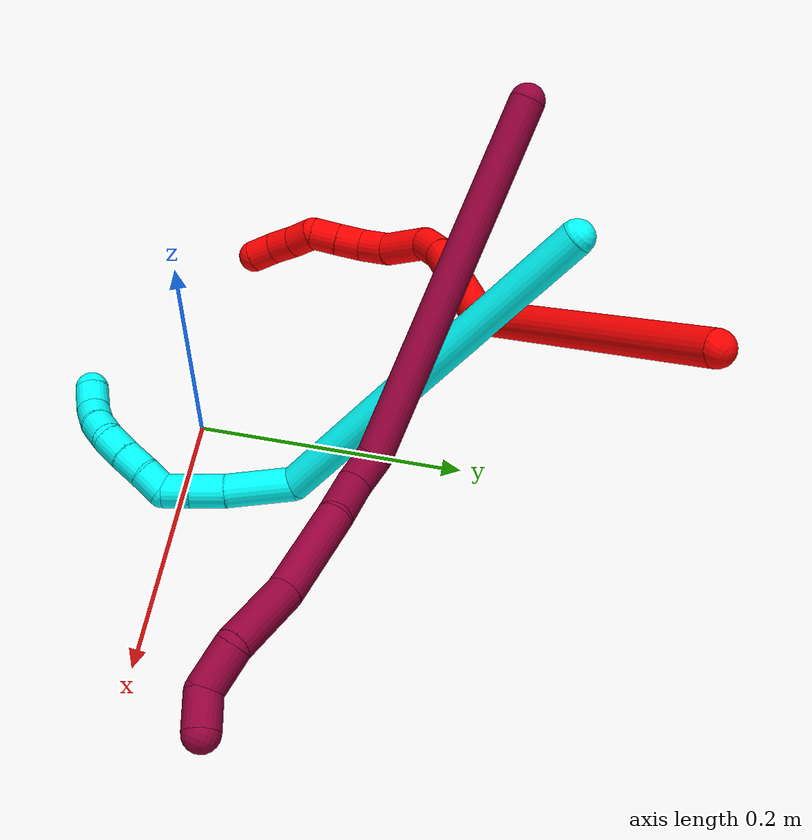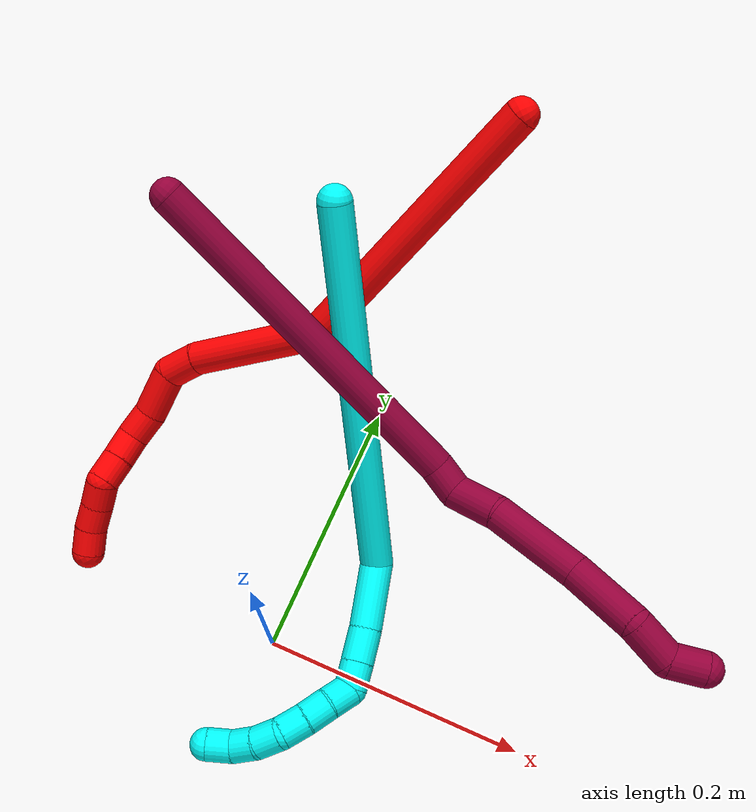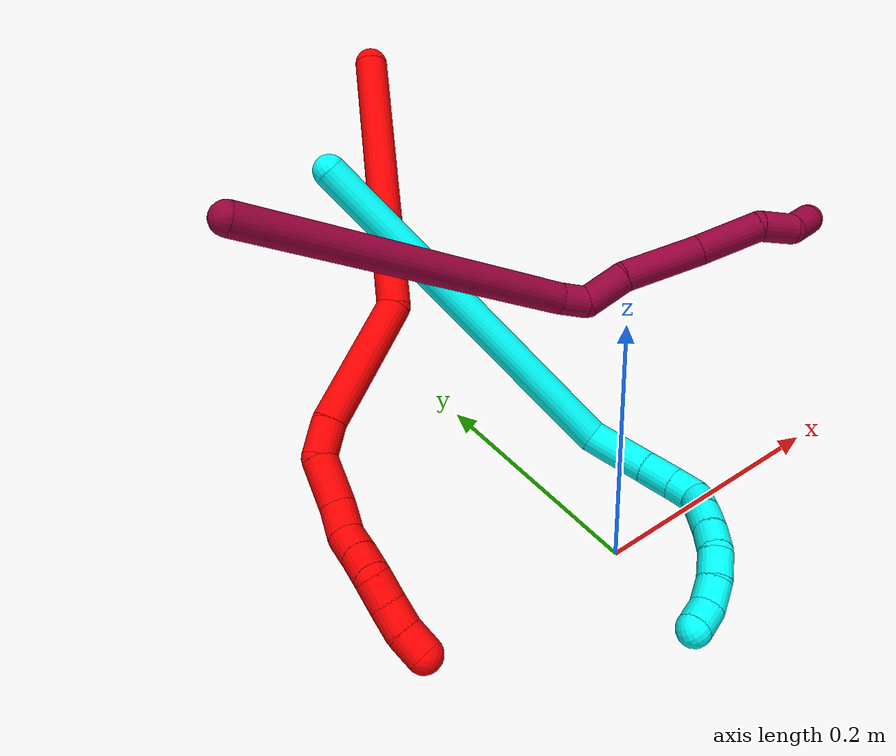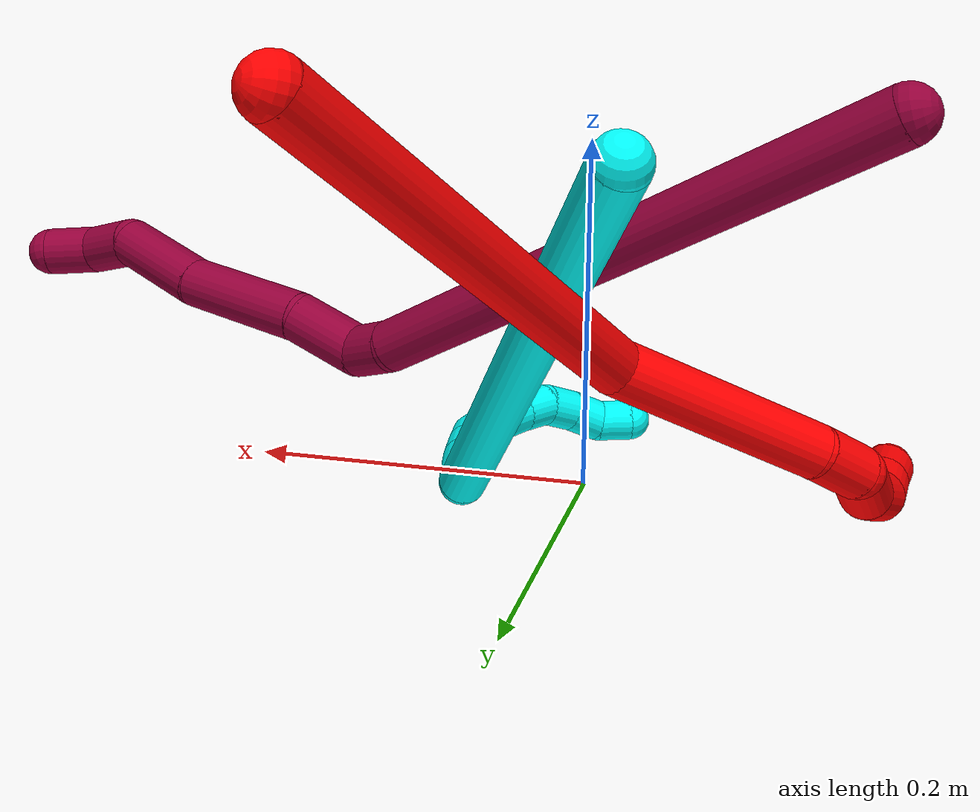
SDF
<sdf version="1.7">
 <world name="default">
  <model name="2">
   <static>0</static>
   <link name="2">
    <collision name="collision-cylinder-e_1_1_4">
     <pose>-0.00374 -0.042469 -0.09683 2.72826 -0.035358 -0.168264</pose>
     <geometry><cylinder><radius>0.0125</radius><length>0.2116</length></cylinder></geometry>
     <surface>
      <friction><ode><mu>1.16</mu><mu2>1.16</mu2><slip1>0</slip1><slip2>0</slip2></ode></friction>
      <contact><ode><kp>1e+06</kp><kd>1</kd><max_vel>0</max_vel><min_depth>0.001</min_depth></ode></contact>
     </surface>
    </collision>
    <visual name="visual-cylinder-e_1_1_4">
     <pose>-0.00374 -0.042469 -0.09683 2.72826 -0.035358 -0.168264</pose>
     <geometry><cylinder><radius>0.0125</radius><length>0.2116</length></cylinder></geometry>
     <material><ambient>1 0 0 1</ambient></material>
    </visual>
    <collision name="collision-cylinder-e_2_4_5">
     <pose>0.011284 -0.086832 -0.240218 3.10096 0.382814 2.93262</pose>
     <geometry><cylinder><radius>0.0125</radius><length>0.100468</length></cylinder></geometry>
     <surface>
      <friction><ode><mu>1.16</mu><mu2>1.16</mu2><slip1>0</slip1><slip2>0</slip2></ode></friction>
      <contact><ode><kp>1e+06</kp><kd>1</kd><max_vel>0</max_vel><min_depth>0.001</min_depth></ode></contact>
     </surface>
    </collision>
    <visual name="visual-cylinder-e_2_4_5">
     <pose>0.011284 -0.086832 -0.240218 3.10096 0.382814 2.93262</pose>
     <geometry><cylinder><radius>0.0125</radius><length>0.100468</length></cylinder></geometry>
     <material><ambient>1 0 0 1</ambient></material>
    </visual>
    <collision name="collision-cylinder-e_3_5_6">
     <pose>0.032558 -0.091089 -0.299652 2.95999 0.189506 1.61363</pose>
     <geometry><cylinder><radius>0.0125</radius><length>0.026655</length></cylinder></geometry>
     <surface>
      <friction><ode><mu>1.16</mu><mu2>1.16</mu2><slip1>0</slip1><slip2>0</slip2></ode></friction>
      <contact><ode><kp>1e+06</kp><kd>1</kd><max_vel>0</max_vel><min_depth>0.001</min_depth></ode></contact>
     </surface>
    </collision>
    <visual name="visual-cylinder-e_3_5_6">
     <pose>0.032558 -0.091089 -0.299652 2.95999 0.189506 1.61363</pose>
     <geometry><cylinder><radius>0.0125</radius><length>0.026655</length></cylinder></geometry>
     <material><ambient>1 0 0 1</ambient></material>
    </visual>
    <collision name="collision-cylinder-e_4_6_7">
     <pose>0.030124 -0.102757 -0.32721 2.57684 -0.277115 -0.8961</pose>
     <geometry><cylinder><radius>0.0125</radius><length>0.036148</length></cylinder></geometry>
     <surface>
      <friction><ode><mu>1.16</mu><mu2>1.16</mu2><slip1>0</slip1><slip2>0</slip2></ode></friction>
      <contact><ode><kp>1e+06</kp><kd>1</kd><max_vel>0</max_vel><min_depth>0.001</min_depth></ode></contact>
     </surface>
    </collision>
    <visual name="visual-cylinder-e_4_6_7">
     <pose>0.030124 -0.102757 -0.32721 2.57684 -0.277115 -0.8961</pose>
     <geometry><cylinder><radius>0.0125</radius><length>0.036148</length></cylinder></geometry>
     <material><ambient>1 0 0 1</ambient></material>
    </visual>
    <collision name="collision-cylinder-e_5_7_8">
     <pose>0.021349 -0.115287 -0.352443 2.8448 -0.334274 -1.69142</pose>
     <geometry><cylinder><radius>0.0125</radius><length>0.023353</length></cylinder></geometry>
     <surface>
      <friction><ode><mu>1.16</mu><mu2>1.16</mu2><slip1>0</slip1><slip2>0</slip2></ode></friction>
      <contact><ode><kp>1e+06</kp><kd>1</kd><max_vel>0</max_vel><min_depth>0.001</min_depth></ode></contact>
     </surface>
    </collision>
    <visual name="visual-cylinder-e_5_7_8">
     <pose>0.021349 -0.115287 -0.352443 2.8448 -0.334274 -1.69142</pose>
     <geometry><cylinder><radius>0.0125</radius><length>0.023353</length></cylinder></geometry>
     <material><ambient>1 0 0 1</ambient></material>
    </visual>
    <collision name="collision-cylinder-e_6_8_9">
     <pose>0.010744 -0.119081 -0.371034 3.07109 -0.698777 -2.94862</pose>
     <geometry><cylinder><radius>0.0125</radius><length>0.021061</length></cylinder></geometry>
     <surface>
      <friction><ode><mu>1.16</mu><mu2>1.16</mu2><slip1>0</slip1><slip2>0</slip2></ode></friction>
      <contact><ode><kp>1e+06</kp><kd>1</kd><max_vel>0</max_vel><min_depth>0.001</min_depth></ode></contact>
     </surface>
    </collision>
    <visual name="visual-cylinder-e_6_8_9">
     <pose>0.010744 -0.119081 -0.371034 3.07109 -0.698777 -2.94862</pose>
     <geometry><cylinder><radius>0.0125</radius><length>0.021061</length></cylinder></geometry>
     <material><ambient>1 0 0 1</ambient></material>
    </visual>
    <collision name="collision-cylinder-e_7_9_10">
     <pose>-0.002388 -0.12013 -0.387177 3.08231 -0.664599 -2.97017</pose>
     <geometry><cylinder><radius>0.0125</radius><length>0.020617</length></cylinder></geometry>
     <surface>
      <friction><ode><mu>1.16</mu><mu2>1.16</mu2><slip1>0</slip1><slip2>0</slip2></ode></friction>
      <contact><ode><kp>1e+06</kp><kd>1</kd><max_vel>0</max_vel><min_depth>0.001</min_depth></ode></contact>
     </surface>
    </collision>
    <visual name="visual-cylinder-e_7_9_10">
     <pose>-0.002388 -0.12013 -0.387177 3.08231 -0.664599 -2.97017</pose>
     <geometry><cylinder><radius>0.0125</radius><length>0.020617</length></cylinder></geometry>
     <material><ambient>1 0 0 1</ambient></material>
    </visual>
    <collision name="collision-cylinder-e_8_10_11">
     <pose>-0.011935 -0.127163 -0.402137 2.37916 -0.324289 -0.774954</pose>
     <geometry><cylinder><radius>0.0125</radius><length>0.020016</length></cylinder></geometry>
     <surface>
      <friction><ode><mu>1.16</mu><mu2>1.16</mu2><slip1>0</slip1><slip2>0</slip2></ode></friction>
      <contact><ode><kp>1e+06</kp><kd>1</kd><max_vel>0</max_vel><min_depth>0.001</min_depth></ode></contact>
     </surface>
    </collision>
    <visual name="visual-cylinder-e_8_10_11">
     <pose>-0.011935 -0.127163 -0.402137 2.37916 -0.324289 -0.774954</pose>
     <geometry><cylinder><radius>0.0125</radius><length>0.020016</length></cylinder></geometry>
     <material><ambient>1 0 0 1</ambient></material>
    </visual>
    <collision name="collision-cylinder-e_9_11_12">
     <pose>-0.018942 -0.139669 -0.416114 2.44493 -0.39032 -0.996997</pose>
     <geometry><cylinder><radius>0.0125</radius><length>0.020066</length></cylinder></geometry>
     <surface>
      <friction><ode><mu>1.16</mu><mu2>1.16</mu2><slip1>0</slip1><slip2>0</slip2></ode></friction>
      <contact><ode><kp>1e+06</kp><kd>1</kd><max_vel>0</max_vel><min_depth>0.001</min_depth></ode></contact>
     </surface>
    </collision>
    <visual name="visual-cylinder-e_9_11_12">
     <pose>-0.018942 -0.139669 -0.416114 2.44493 -0.39032 -0.996997</pose>
     <geometry><cylinder><radius>0.0125</radius><length>0.020066</length></cylinder></geometry>
     <material><ambient>1 0 0 1</ambient></material>
    </visual>
    <collision name="collision-cylinder-e_10_12_2">
     <pose>-0.027986 -0.151801 -0.429118 2.33206 -0.549508 -1.1639</pose>
     <geometry><cylinder><radius>0.0125</radius><length>0.020015</length></cylinder></geometry>
     <surface>
      <friction><ode><mu>1.16</mu><mu2>1.16</mu2><slip1>0</slip1><slip2>0</slip2></ode></friction>
      <contact><ode><kp>1e+06</kp><kd>1</kd><max_vel>0</max_vel><min_depth>0.001</min_depth></ode></contact>
     </surface>
    </collision>
    <visual name="visual-cylinder-e_10_12_2">
     <pose>-0.027986 -0.151801 -0.429118 2.33206 -0.549508 -1.1639</pose>
     <geometry><cylinder><radius>0.0125</radius><length>0.020015</length></cylinder></geometry>
     <material><ambient>1 0 0 1</ambient></material>
    </visual>
    <collision name="collision-sphere-2">
     <pose>-0.033212 -0.157979 -0.435005 0 -0 0</pose>
     <geometry><sphere><radius>0.0125</radius></sphere></geometry>
     <surface>
      <friction><ode><mu>1.16</mu><mu2>1.16</mu2><slip1>0</slip1><slip2>0</slip2></ode></friction>
      <contact><ode><kp>1e+06</kp><kd>1</kd><max_vel>0</max_vel><min_depth>0.001</min_depth></ode></contact>
     </surface>
    </collision>
    <visual name="visual-sphere-2">
     <pose>-0.033212 -0.157979 -0.435005 0 -0 0</pose>
     <geometry><sphere><radius>0.0125</radius></sphere></geometry>
     <material><ambient>1 0 0 1</ambient></material>
    </visual>
    <collision name="collision-sphere-12">
     <pose>-0.022759 -0.145622 -0.423231 0 -0 0</pose>
     <geometry><sphere><radius>0.0125</radius></sphere></geometry>
     <surface>
      <friction><ode><mu>1.16</mu><mu2>1.16</mu2><slip1>0</slip1><slip2>0</slip2></ode></friction>
      <contact><ode><kp>1e+06</kp><kd>1</kd><max_vel>0</max_vel><min_depth>0.001</min_depth></ode></contact>
     </surface>
    </collision>
    <visual name="visual-sphere-12">
     <pose>-0.022759 -0.145622 -0.423231 0 -0 0</pose>
     <geometry><sphere><radius>0.0125</radius></sphere></geometry>
     <material><ambient>1 0 0 1</ambient></material>
    </visual>
    <collision name="collision-sphere-11">
     <pose>-0.015124 -0.133715 -0.408997 0 -0 0</pose>
     <geometry><sphere><radius>0.0125</radius></sphere></geometry>
     <surface>
      <friction><ode><mu>1.16</mu><mu2>1.16</mu2><slip1>0</slip1><slip2>0</slip2></ode></friction>
      <contact><ode><kp>1e+06</kp><kd>1</kd><max_vel>0</max_vel><min_depth>0.001</min_depth></ode></contact>
     </surface>
    </collision>
    <visual name="visual-sphere-11">
     <pose>-0.015124 -0.133715 -0.408997 0 -0 0</pose>
     <geometry><sphere><radius>0.0125</radius></sphere></geometry>
     <material><ambient>1 0 0 1</ambient></material>
    </visual>
    <collision name="collision-sphere-10">
     <pose>-0.008746 -0.120611 -0.395277 0 -0 0</pose>
     <geometry><sphere><radius>0.0125</radius></sphere></geometry>
     <surface>
      <friction><ode><mu>1.16</mu><mu2>1.16</mu2><slip1>0</slip1><slip2>0</slip2></ode></friction>
      <contact><ode><kp>1e+06</kp><kd>1</kd><max_vel>0</max_vel><min_depth>0.001</min_depth></ode></contact>
     </surface>
    </collision>
    <visual name="visual-sphere-10">
     <pose>-0.008746 -0.120611 -0.395277 0 -0 0</pose>
     <geometry><sphere><radius>0.0125</radius></sphere></geometry>
     <material><ambient>1 0 0 1</ambient></material>
    </visual>
    <collision name="collision-sphere-9">
     <pose>0.003969 -0.119649 -0.379076 0 -0 0</pose>
     <geometry><sphere><radius>0.0125</radius></sphere></geometry>
     <surface>
      <friction><ode><mu>1.16</mu><mu2>1.16</mu2><slip1>0</slip1><slip2>0</slip2></ode></friction>
      <contact><ode><kp>1e+06</kp><kd>1</kd><max_vel>0</max_vel><min_depth>0.001</min_depth></ode></contact>
     </surface>
    </collision>
    <visual name="visual-sphere-9">
     <pose>0.003969 -0.119649 -0.379076 0 -0 0</pose>
     <geometry><sphere><radius>0.0125</radius></sphere></geometry>
     <material><ambient>1 0 0 1</ambient></material>
    </visual>
    <collision name="collision-sphere-4">
     <pose>-0.00748 -0.084939 -0.193659 0 -0 0</pose>
     <geometry><sphere><radius>0.0125</radius></sphere></geometry>
     <surface>
      <friction><ode><mu>1.16</mu><mu2>1.16</mu2><slip1>0</slip1><slip2>0</slip2></ode></friction>
      <contact><ode><kp>1e+06</kp><kd>1</kd><max_vel>0</max_vel><min_depth>0.001</min_depth></ode></contact>
     </surface>
    </collision>
    <visual name="visual-sphere-4">
     <pose>-0.00748 -0.084939 -0.193659 0 -0 0</pose>
     <geometry><sphere><radius>0.0125</radius></sphere></geometry>
     <material><ambient>1 0 0 1</ambient></material>
    </visual>
    <collision name="collision-sphere-1">
     <geometry><sphere><radius>0.0125</radius></sphere></geometry>
     <surface>
      <friction><ode><mu>1.16</mu><mu2>1.16</mu2><slip1>0</slip1><slip2>0</slip2></ode></friction>
      <contact><ode><kp>1e+06</kp><kd>1</kd><max_vel>0</max_vel><min_depth>0.001</min_depth></ode></contact>
     </surface>
    </collision>
    <visual name="visual-sphere-1">
     <geometry><sphere><radius>0.0125</radius></sphere></geometry>
     <material><ambient>1 0 0 1</ambient></material>
    </visual>
    <collision name="collision-sphere-8">
     <pose>0.017518 -0.118513 -0.362991 0 -0 0</pose>
     <geometry><sphere><radius>0.0125</radius></sphere></geometry>
     <surface>
      <friction><ode><mu>1.16</mu><mu2>1.16</mu2><slip1>0</slip1><slip2>0</slip2></ode></friction>
      <contact><ode><kp>1e+06</kp><kd>1</kd><max_vel>0</max_vel><min_depth>0.001</min_depth></ode></contact>
     </surface>
    </collision>
    <visual name="visual-sphere-8">
     <pose>0.017518 -0.118513 -0.362991 0 -0 0</pose>
     <geometry><sphere><radius>0.0125</radius></sphere></geometry>
     <material><ambient>1 0 0 1</ambient></material>
    </visual>
    <collision name="collision-sphere-5">
     <pose>0.030048 -0.088725 -0.286778 0 -0 0</pose>
     <geometry><sphere><radius>0.0125</radius></sphere></geometry>
     <surface>
      <friction><ode><mu>1.16</mu><mu2>1.16</mu2><slip1>0</slip1><slip2>0</slip2></ode></friction>
      <contact><ode><kp>1e+06</kp><kd>1</kd><max_vel>0</max_vel><min_depth>0.001</min_depth></ode></contact>
     </surface>
    </collision>
    <visual name="visual-sphere-5">
     <pose>0.030048 -0.088725 -0.286778 0 -0 0</pose>
     <geometry><sphere><radius>0.0125</radius></sphere></geometry>
     <material><ambient>1 0 0 1</ambient></material>
    </visual>
    <collision name="collision-sphere-6">
     <pose>0.035069 -0.093453 -0.312525 0 -0 0</pose>
     <geometry><sphere><radius>0.0125</radius></sphere></geometry>
     <surface>
      <friction><ode><mu>1.16</mu><mu2>1.16</mu2><slip1>0</slip1><slip2>0</slip2></ode></friction>
      <contact><ode><kp>1e+06</kp><kd>1</kd><max_vel>0</max_vel><min_depth>0.001</min_depth></ode></contact>
     </surface>
    </collision>
    <visual name="visual-sphere-6">
     <pose>0.035069 -0.093453 -0.312525 0 -0 0</pose>
     <geometry><sphere><radius>0.0125</radius></sphere></geometry>
     <material><ambient>1 0 0 1</ambient></material>
    </visual>
    <collision name="collision-sphere-7">
     <pose>0.025179 -0.112061 -0.341895 0 -0 0</pose>
     <geometry><sphere><radius>0.0125</radius></sphere></geometry>
     <surface>
      <friction><ode><mu>1.16</mu><mu2>1.16</mu2><slip1>0</slip1><slip2>0</slip2></ode></friction>
      <contact><ode><kp>1e+06</kp><kd>1</kd><max_vel>0</max_vel><min_depth>0.001</min_depth></ode></contact>
     </surface>
    </collision>
    <visual name="visual-sphere-7">
     <pose>0.025179 -0.112061 -0.341895 0 -0 0</pose>
     <geometry><sphere><radius>0.0125</radius></sphere></geometry>
     <material><ambient>1 0 0 1</ambient></material>
    </visual>
    <inertial>
     <pose>0.003591 -0.079832 -0.226908 0 -0 0</pose>
     <mass>0.5</mass>
     <inertia>
      <ixx>0.000582</ixx>
      <ixy>0</ixy>
      <ixz>0</ixz>
      <iyy>-0.000767</iyy>
      <iyz>0</iyz>
      <izz>0.000297</izz>
     </inertia>
    </inertial>
   </link>
   <pose>0.034664 0.348771 0.25547 1.27597 0.394386 2.27303</pose>
  </model>
  <model name="3">
   <static>0</static>
   <link name="3">
    <collision name="collision-cylinder-e_1_1_4">
     <pose>0.027119 0.004151 -0.138718 -3.11168 0.192978 -2.83496</pose>
     <geometry><cylinder><radius>0.0125</radius><length>0.282809</length></cylinder></geometry>
     <surface>
      <friction><ode><mu>1.16</mu><mu2>1.16</mu2><slip1>0</slip1><slip2>0</slip2></ode></friction>
      <contact><ode><kp>1e+06</kp><kd>1</kd><max_vel>0</max_vel><min_depth>0.001</min_depth></ode></contact>
     </surface>
    </collision>
    <visual name="visual-cylinder-e_1_1_4">
     <pose>0.027119 0.004151 -0.138718 -3.11168 0.192978 -2.83496</pose>
     <geometry><cylinder><radius>0.0125</radius><length>0.282809</length></cylinder></geometry>
     <material><ambient>0.003922 1 0.996078 1</ambient></material>
    </visual>
    <collision name="collision-cylinder-e_2_4_5">
     <pose>0.062799 -0.006863 -0.295754 2.45015 0.345549 0.902354</pose>
     <geometry><cylinder><radius>0.0125</radius><length>0.05055</length></cylinder></geometry>
     <surface>
      <friction><ode><mu>1.16</mu><mu2>1.16</mu2><slip1>0</slip1><slip2>0</slip2></ode></friction>
      <contact><ode><kp>1e+06</kp><kd>1</kd><max_vel>0</max_vel><min_depth>0.001</min_depth></ode></contact>
     </surface>
    </collision>
    <visual name="visual-cylinder-e_2_4_5">
     <pose>0.062799 -0.006863 -0.295754 2.45015 0.345549 0.902354</pose>
     <geometry><cylinder><radius>0.0125</radius><length>0.05055</length></cylinder></geometry>
     <material><ambient>0.003922 1 0.996078 1</ambient></material>
    </visual>
    <collision name="collision-cylinder-e_3_5_6">
     <pose>0.075373 -0.030856 -0.322696 2.34438 0.314446 0.720034</pose>
     <geometry><cylinder><radius>0.0125</radius><length>0.025955</length></cylinder></geometry>
     <surface>
      <friction><ode><mu>1.16</mu><mu2>1.16</mu2><slip1>0</slip1><slip2>0</slip2></ode></friction>
      <contact><ode><kp>1e+06</kp><kd>1</kd><max_vel>0</max_vel><min_depth>0.001</min_depth></ode></contact>
     </surface>
    </collision>
    <visual name="visual-cylinder-e_3_5_6">
     <pose>0.075373 -0.030856 -0.322696 2.34438 0.314446 0.720034</pose>
     <geometry><cylinder><radius>0.0125</radius><length>0.025955</length></cylinder></geometry>
     <material><ambient>0.003922 1 0.996078 1</ambient></material>
    </visual>
    <collision name="collision-cylinder-e_4_6_7">
     <pose>0.082277 -0.046536 -0.338021 2.3452 0.292877 0.674457</pose>
     <geometry><cylinder><radius>0.0125</radius><length>0.020022</length></cylinder></geometry>
     <surface>
      <friction><ode><mu>1.16</mu><mu2>1.16</mu2><slip1>0</slip1><slip2>0</slip2></ode></friction>
      <contact><ode><kp>1e+06</kp><kd>1</kd><max_vel>0</max_vel><min_depth>0.001</min_depth></ode></contact>
     </surface>
    </collision>
    <visual name="visual-cylinder-e_4_6_7">
     <pose>0.082277 -0.046536 -0.338021 2.3452 0.292877 0.674457</pose>
     <geometry><cylinder><radius>0.0125</radius><length>0.020022</length></cylinder></geometry>
     <material><ambient>0.003922 1 0.996078 1</ambient></material>
    </visual>
    <collision name="collision-cylinder-e_5_7_8">
     <pose>0.082525 -0.062754 -0.347236 1.83288 -0.266016 -0.345367</pose>
     <geometry><cylinder><radius>0.0125</radius><length>0.020102</length></cylinder></geometry>
     <surface>
      <friction><ode><mu>1.16</mu><mu2>1.16</mu2><slip1>0</slip1><slip2>0</slip2></ode></friction>
      <contact><ode><kp>1e+06</kp><kd>1</kd><max_vel>0</max_vel><min_depth>0.001</min_depth></ode></contact>
     </surface>
    </collision>
    <visual name="visual-cylinder-e_5_7_8">
     <pose>0.082525 -0.062754 -0.347236 1.83288 -0.266016 -0.345367</pose>
     <geometry><cylinder><radius>0.0125</radius><length>0.020102</length></cylinder></geometry>
     <material><ambient>0.003922 1 0.996078 1</ambient></material>
    </visual>
    <collision name="collision-cylinder-e_6_8_9">
     <pose>0.07675 -0.08094 -0.353409 1.96417 -0.317072 -0.470047</pose>
     <geometry><cylinder><radius>0.0125</radius><length>0.020099</length></cylinder></geometry>
     <surface>
      <friction><ode><mu>1.16</mu><mu2>1.16</mu2><slip1>0</slip1><slip2>0</slip2></ode></friction>
      <contact><ode><kp>1e+06</kp><kd>1</kd><max_vel>0</max_vel><min_depth>0.001</min_depth></ode></contact>
     </surface>
    </collision>
    <visual name="visual-cylinder-e_6_8_9">
     <pose>0.07675 -0.08094 -0.353409 1.96417 -0.317072 -0.470047</pose>
     <geometry><cylinder><radius>0.0125</radius><length>0.020099</length></cylinder></geometry>
     <material><ambient>0.003922 1 0.996078 1</ambient></material>
    </visual>
    <collision name="collision-cylinder-e_7_9_10">
     <pose>0.06959 -0.098421 -0.360727 1.9704 -0.404558 -0.599818</pose>
     <geometry><cylinder><radius>0.0125</radius><length>0.020456</length></cylinder></geometry>
     <surface>
      <friction><ode><mu>1.16</mu><mu2>1.16</mu2><slip1>0</slip1><slip2>0</slip2></ode></friction>
      <contact><ode><kp>1e+06</kp><kd>1</kd><max_vel>0</max_vel><min_depth>0.001</min_depth></ode></contact>
     </surface>
    </collision>
    <visual name="visual-cylinder-e_7_9_10">
     <pose>0.06959 -0.098421 -0.360727 1.9704 -0.404558 -0.599818</pose>
     <geometry><cylinder><radius>0.0125</radius><length>0.020456</length></cylinder></geometry>
     <material><ambient>0.003922 1 0.996078 1</ambient></material>
    </visual>
    <collision name="collision-cylinder-e_8_10_11">
     <pose>0.059053 -0.112653 -0.369542 2.31764 -0.709035 -1.40558</pose>
     <geometry><cylinder><radius>0.0125</radius><length>0.020002</length></cylinder></geometry>
     <surface>
      <friction><ode><mu>1.16</mu><mu2>1.16</mu2><slip1>0</slip1><slip2>0</slip2></ode></friction>
      <contact><ode><kp>1e+06</kp><kd>1</kd><max_vel>0</max_vel><min_depth>0.001</min_depth></ode></contact>
     </surface>
    </collision>
    <visual name="visual-cylinder-e_8_10_11">
     <pose>0.059053 -0.112653 -0.369542 2.31764 -0.709035 -1.40558</pose>
     <geometry><cylinder><radius>0.0125</radius><length>0.020002</length></cylinder></geometry>
     <material><ambient>0.003922 1 0.996078 1</ambient></material>
    </visual>
    <collision name="collision-cylinder-e_9_11_12">
     <pose>0.044534 -0.122293 -0.379098 2.39521 -0.92823 -1.81406</pose>
     <geometry><cylinder><radius>0.0125</radius><length>0.020004</length></cylinder></geometry>
     <surface>
      <friction><ode><mu>1.16</mu><mu2>1.16</mu2><slip1>0</slip1><slip2>0</slip2></ode></friction>
      <contact><ode><kp>1e+06</kp><kd>1</kd><max_vel>0</max_vel><min_depth>0.001</min_depth></ode></contact>
     </surface>
    </collision>
    <visual name="visual-cylinder-e_9_11_12">
     <pose>0.044534 -0.122293 -0.379098 2.39521 -0.92823 -1.81406</pose>
     <geometry><cylinder><radius>0.0125</radius><length>0.020004</length></cylinder></geometry>
     <material><ambient>0.003922 1 0.996078 1</ambient></material>
    </visual>
    <collision name="collision-cylinder-e_10_12_2">
     <pose>0.028474 -0.132292 -0.383513 1.57322 -0.936099 -0.938053</pose>
     <geometry><cylinder><radius>0.0125</radius><length>0.020001</length></cylinder></geometry>
     <surface>
      <friction><ode><mu>1.16</mu><mu2>1.16</mu2><slip1>0</slip1><slip2>0</slip2></ode></friction>
      <contact><ode><kp>1e+06</kp><kd>1</kd><max_vel>0</max_vel><min_depth>0.001</min_depth></ode></contact>
     </surface>
    </collision>
    <visual name="visual-cylinder-e_10_12_2">
     <pose>0.028474 -0.132292 -0.383513 1.57322 -0.936099 -0.938053</pose>
     <geometry><cylinder><radius>0.0125</radius><length>0.020001</length></cylinder></geometry>
     <material><ambient>0.003922 1 0.996078 1</ambient></material>
    </visual>
    <collision name="collision-sphere-2">
     <pose>0.020421 -0.138222 -0.383527 0 -0 0</pose>
     <geometry><sphere><radius>0.0125</radius></sphere></geometry>
     <surface>
      <friction><ode><mu>1.16</mu><mu2>1.16</mu2><slip1>0</slip1><slip2>0</slip2></ode></friction>
      <contact><ode><kp>1e+06</kp><kd>1</kd><max_vel>0</max_vel><min_depth>0.001</min_depth></ode></contact>
     </surface>
    </collision>
    <visual name="visual-sphere-2">
     <pose>0.020421 -0.138222 -0.383527 0 -0 0</pose>
     <geometry><sphere><radius>0.0125</radius></sphere></geometry>
     <material><ambient>0.003922 1 0.996078 1</ambient></material>
    </visual>
    <collision name="collision-sphere-12">
     <pose>0.036527 -0.126363 -0.383499 0 -0 0</pose>
     <geometry><sphere><radius>0.0125</radius></sphere></geometry>
     <surface>
      <friction><ode><mu>1.16</mu><mu2>1.16</mu2><slip1>0</slip1><slip2>0</slip2></ode></friction>
      <contact><ode><kp>1e+06</kp><kd>1</kd><max_vel>0</max_vel><min_depth>0.001</min_depth></ode></contact>
     </surface>
    </collision>
    <visual name="visual-sphere-12">
     <pose>0.036527 -0.126363 -0.383499 0 -0 0</pose>
     <geometry><sphere><radius>0.0125</radius></sphere></geometry>
     <material><ambient>0.003922 1 0.996078 1</ambient></material>
    </visual>
    <collision name="collision-sphere-11">
     <pose>0.052541 -0.118223 -0.374698 0 -0 0</pose>
     <geometry><sphere><radius>0.0125</radius></sphere></geometry>
     <surface>
      <friction><ode><mu>1.16</mu><mu2>1.16</mu2><slip1>0</slip1><slip2>0</slip2></ode></friction>
      <contact><ode><kp>1e+06</kp><kd>1</kd><max_vel>0</max_vel><min_depth>0.001</min_depth></ode></contact>
     </surface>
    </collision>
    <visual name="visual-sphere-11">
     <pose>0.052541 -0.118223 -0.374698 0 -0 0</pose>
     <geometry><sphere><radius>0.0125</radius></sphere></geometry>
     <material><ambient>0.003922 1 0.996078 1</ambient></material>
    </visual>
    <collision name="collision-sphere-10">
     <pose>0.065565 -0.107083 -0.364385 0 -0 0</pose>
     <geometry><sphere><radius>0.0125</radius></sphere></geometry>
     <surface>
      <friction><ode><mu>1.16</mu><mu2>1.16</mu2><slip1>0</slip1><slip2>0</slip2></ode></friction>
      <contact><ode><kp>1e+06</kp><kd>1</kd><max_vel>0</max_vel><min_depth>0.001</min_depth></ode></contact>
     </surface>
    </collision>
    <visual name="visual-sphere-10">
     <pose>0.065565 -0.107083 -0.364385 0 -0 0</pose>
     <geometry><sphere><radius>0.0125</radius></sphere></geometry>
     <material><ambient>0.003922 1 0.996078 1</ambient></material>
    </visual>
    <collision name="collision-sphere-9">
     <pose>0.073616 -0.08976 -0.357069 0 -0 0</pose>
     <geometry><sphere><radius>0.0125</radius></sphere></geometry>
     <surface>
      <friction><ode><mu>1.16</mu><mu2>1.16</mu2><slip1>0</slip1><slip2>0</slip2></ode></friction>
      <contact><ode><kp>1e+06</kp><kd>1</kd><max_vel>0</max_vel><min_depth>0.001</min_depth></ode></contact>
     </surface>
    </collision>
    <visual name="visual-sphere-9">
     <pose>0.073616 -0.08976 -0.357069 0 -0 0</pose>
     <geometry><sphere><radius>0.0125</radius></sphere></geometry>
     <material><ambient>0.003922 1 0.996078 1</ambient></material>
    </visual>
    <collision name="collision-sphere-4">
     <pose>0.054238 0.008301 -0.277435 0 -0 0</pose>
     <geometry><sphere><radius>0.0125</radius></sphere></geometry>
     <surface>
      <friction><ode><mu>1.16</mu><mu2>1.16</mu2><slip1>0</slip1><slip2>0</slip2></ode></friction>
      <contact><ode><kp>1e+06</kp><kd>1</kd><max_vel>0</max_vel><min_depth>0.001</min_depth></ode></contact>
     </surface>
    </collision>
    <visual name="visual-sphere-4">
     <pose>0.054238 0.008301 -0.277435 0 -0 0</pose>
     <geometry><sphere><radius>0.0125</radius></sphere></geometry>
     <material><ambient>0.003922 1 0.996078 1</ambient></material>
    </visual>
    <collision name="collision-sphere-1">
     <geometry><sphere><radius>0.0125</radius></sphere></geometry>
     <surface>
      <friction><ode><mu>1.16</mu><mu2>1.16</mu2><slip1>0</slip1><slip2>0</slip2></ode></friction>
      <contact><ode><kp>1e+06</kp><kd>1</kd><max_vel>0</max_vel><min_depth>0.001</min_depth></ode></contact>
     </surface>
    </collision>
    <visual name="visual-sphere-1">
     <geometry><sphere><radius>0.0125</radius></sphere></geometry>
     <material><ambient>0.003922 1 0.996078 1</ambient></material>
    </visual>
    <collision name="collision-sphere-8">
     <pose>0.079883 -0.072121 -0.349749 0 -0 0</pose>
     <geometry><sphere><radius>0.0125</radius></sphere></geometry>
     <surface>
      <friction><ode><mu>1.16</mu><mu2>1.16</mu2><slip1>0</slip1><slip2>0</slip2></ode></friction>
      <contact><ode><kp>1e+06</kp><kd>1</kd><max_vel>0</max_vel><min_depth>0.001</min_depth></ode></contact>
     </surface>
    </collision>
    <visual name="visual-sphere-8">
     <pose>0.079883 -0.072121 -0.349749 0 -0 0</pose>
     <geometry><sphere><radius>0.0125</radius></sphere></geometry>
     <material><ambient>0.003922 1 0.996078 1</ambient></material>
    </visual>
    <collision name="collision-sphere-5">
     <pose>0.07136 -0.022027 -0.314073 0 -0 0</pose>
     <geometry><sphere><radius>0.0125</radius></sphere></geometry>
     <surface>
      <friction><ode><mu>1.16</mu><mu2>1.16</mu2><slip1>0</slip1><slip2>0</slip2></ode></friction>
      <contact><ode><kp>1e+06</kp><kd>1</kd><max_vel>0</max_vel><min_depth>0.001</min_depth></ode></contact>
     </surface>
    </collision>
    <visual name="visual-sphere-5">
     <pose>0.07136 -0.022027 -0.314073 0 -0 0</pose>
     <geometry><sphere><radius>0.0125</radius></sphere></geometry>
     <material><ambient>0.003922 1 0.996078 1</ambient></material>
    </visual>
    <collision name="collision-sphere-6">
     <pose>0.079387 -0.039685 -0.331319 0 -0 0</pose>
     <geometry><sphere><radius>0.0125</radius></sphere></geometry>
     <surface>
      <friction><ode><mu>1.16</mu><mu2>1.16</mu2><slip1>0</slip1><slip2>0</slip2></ode></friction>
      <contact><ode><kp>1e+06</kp><kd>1</kd><max_vel>0</max_vel><min_depth>0.001</min_depth></ode></contact>
     </surface>
    </collision>
    <visual name="visual-sphere-6">
     <pose>0.079387 -0.039685 -0.331319 0 -0 0</pose>
     <geometry><sphere><radius>0.0125</radius></sphere></geometry>
     <material><ambient>0.003922 1 0.996078 1</ambient></material>
    </visual>
    <collision name="collision-sphere-7">
     <pose>0.085168 -0.053388 -0.344724 0 -0 0</pose>
     <geometry><sphere><radius>0.0125</radius></sphere></geometry>
     <surface>
      <friction><ode><mu>1.16</mu><mu2>1.16</mu2><slip1>0</slip1><slip2>0</slip2></ode></friction>
      <contact><ode><kp>1e+06</kp><kd>1</kd><max_vel>0</max_vel><min_depth>0.001</min_depth></ode></contact>
     </surface>
    </collision>
    <visual name="visual-sphere-7">
     <pose>0.085168 -0.053388 -0.344724 0 -0 0</pose>
     <geometry><sphere><radius>0.0125</radius></sphere></geometry>
     <material><ambient>0.003922 1 0.996078 1</ambient></material>
    </visual>
    <inertial>
     <pose>0.043428 -0.026306 -0.226865 0 -0 0</pose>
     <mass>0.5</mass>
     <inertia>
      <ixx>-0.002312</ixx>
      <ixy>0</ixy>
      <ixz>0</ixz>
      <iyy>0.001241</iyy>
      <iyz>0</iyz>
      <izz>-0.000434</izz>
     </inertia>
    </inertial>
   </link>
   <pose>-0.058373 0.25683 0.223712 -0.607203 -0.378071 -0.174965</pose>
  </model>
  <model name="8">
   <static>0</static>
   <link name="8">
    <collision name="collision-cylinder-e_1_1_4">
     <pose>0.024699 -0.002163 0.12837 0.016844 0.190059 0.001606</pose>
     <geometry><cylinder><radius>0.0125</radius><length>0.261484</length></cylinder></geometry>
     <surface>
      <friction><ode><mu>1.16</mu><mu2>1.16</mu2><slip1>0</slip1><slip2>0</slip2></ode></friction>
      <contact><ode><kp>1e+06</kp><kd>1</kd><max_vel>0</max_vel><min_depth>0.001</min_depth></ode></contact>
     </surface>
    </collision>
    <visual name="visual-cylinder-e_1_1_4">
     <pose>0.024699 -0.002163 0.12837 0.016844 0.190059 0.001606</pose>
     <geometry><cylinder><radius>0.0125</radius><length>0.261484</length></cylinder></geometry>
     <material><ambient>0.584314 0 0.227451 1</ambient></material>
    </visual>
    <collision name="collision-cylinder-e_2_4_5">
     <pose>0.049913 -0.007072 0.268059 0.238115 0.044139 0.005281</pose>
     <geometry><cylinder><radius>0.0125</radius><length>0.023319</length></cylinder></geometry>
     <surface>
      <friction><ode><mu>1.16</mu><mu2>1.16</mu2><slip1>0</slip1><slip2>0</slip2></ode></friction>
      <contact><ode><kp>1e+06</kp><kd>1</kd><max_vel>0</max_vel><min_depth>0.001</min_depth></ode></contact>
     </surface>
    </collision>
    <visual name="visual-cylinder-e_2_4_5">
     <pose>0.049913 -0.007072 0.268059 0.238115 0.044139 0.005281</pose>
     <geometry><cylinder><radius>0.0125</radius><length>0.023319</length></cylinder></geometry>
     <material><ambient>0.584314 0 0.227451 1</ambient></material>
    </visual>
    <collision name="collision-cylinder-e_3_5_6">
     <pose>0.039103 -0.01099 0.293596 0.082103 -0.670952 -0.02864</pose>
     <geometry><cylinder><radius>0.0125</radius><length>0.036429</length></cylinder></geometry>
     <surface>
      <friction><ode><mu>1.16</mu><mu2>1.16</mu2><slip1>0</slip1><slip2>0</slip2></ode></friction>
      <contact><ode><kp>1e+06</kp><kd>1</kd><max_vel>0</max_vel><min_depth>0.001</min_depth></ode></contact>
     </surface>
    </collision>
    <visual name="visual-cylinder-e_3_5_6">
     <pose>0.039103 -0.01099 0.293596 0.082103 -0.670952 -0.02864</pose>
     <geometry><cylinder><radius>0.0125</radius><length>0.036429</length></cylinder></geometry>
     <material><ambient>0.584314 0 0.227451 1</ambient></material>
    </visual>
    <collision name="collision-cylinder-e_4_6_7">
     <pose>0.014138 -0.01677 0.338264 0.150245 -0.416938 -0.03184</pose>
     <geometry><cylinder><radius>0.0125</radius><length>0.067365</length></cylinder></geometry>
     <surface>
      <friction><ode><mu>1.16</mu><mu2>1.16</mu2><slip1>0</slip1><slip2>0</slip2></ode></friction>
      <contact><ode><kp>1e+06</kp><kd>1</kd><max_vel>0</max_vel><min_depth>0.001</min_depth></ode></contact>
     </surface>
    </collision>
    <visual name="visual-cylinder-e_4_6_7">
     <pose>0.014138 -0.01677 0.338264 0.150245 -0.416938 -0.03184</pose>
     <geometry><cylinder><radius>0.0125</radius><length>0.067365</length></cylinder></geometry>
     <material><ambient>0.584314 0 0.227451 1</ambient></material>
    </visual>
    <collision name="collision-cylinder-e_5_7_8">
     <pose>-0.012991 -0.028475 0.39067 0.312583 -0.529039 -0.085313</pose>
     <geometry><cylinder><radius>0.0125</radius><length>0.053455</length></cylinder></geometry>
     <surface>
      <friction><ode><mu>1.16</mu><mu2>1.16</mu2><slip1>0</slip1><slip2>0</slip2></ode></friction>
      <contact><ode><kp>1e+06</kp><kd>1</kd><max_vel>0</max_vel><min_depth>0.001</min_depth></ode></contact>
     </surface>
    </collision>
    <visual name="visual-cylinder-e_5_7_8">
     <pose>-0.012991 -0.028475 0.39067 0.312583 -0.529039 -0.085313</pose>
     <geometry><cylinder><radius>0.0125</radius><length>0.053455</length></cylinder></geometry>
     <material><ambient>0.584314 0 0.227451 1</ambient></material>
    </visual>
    <collision name="collision-cylinder-e_6_8_9">
     <pose>-0.026808 -0.03833 0.428334 0.173892 -0.020504 -0.001787</pose>
     <geometry><cylinder><radius>0.0125</radius><length>0.031905</length></cylinder></geometry>
     <surface>
      <friction><ode><mu>1.16</mu><mu2>1.16</mu2><slip1>0</slip1><slip2>0</slip2></ode></friction>
      <contact><ode><kp>1e+06</kp><kd>1</kd><max_vel>0</max_vel><min_depth>0.001</min_depth></ode></contact>
     </surface>
    </collision>
    <visual name="visual-cylinder-e_6_8_9">
     <pose>-0.026808 -0.03833 0.428334 0.173892 -0.020504 -0.001787</pose>
     <geometry><cylinder><radius>0.0125</radius><length>0.031905</length></cylinder></geometry>
     <material><ambient>0.584314 0 0.227451 1</ambient></material>
    </visual>
    <collision name="collision-cylinder-e_7_9_2">
     <pose>-0.030586 -0.036507 0.455733 -0.37356 -0.268247 0.050989</pose>
     <geometry><cylinder><radius>0.0125</radius><length>0.026043</length></cylinder></geometry>
     <surface>
      <friction><ode><mu>1.16</mu><mu2>1.16</mu2><slip1>0</slip1><slip2>0</slip2></ode></friction>
      <contact><ode><kp>1e+06</kp><kd>1</kd><max_vel>0</max_vel><min_depth>0.001</min_depth></ode></contact>
     </surface>
    </collision>
    <visual name="visual-cylinder-e_7_9_2">
     <pose>-0.030586 -0.036507 0.455733 -0.37356 -0.268247 0.050989</pose>
     <geometry><cylinder><radius>0.0125</radius><length>0.026043</length></cylinder></geometry>
     <material><ambient>0.584314 0 0.227451 1</ambient></material>
    </visual>
    <collision name="collision-sphere-2">
     <pose>-0.034037 -0.031925 0.467423 0 -0 0</pose>
     <geometry><sphere><radius>0.0125</radius></sphere></geometry>
     <surface>
      <friction><ode><mu>1.16</mu><mu2>1.16</mu2><slip1>0</slip1><slip2>0</slip2></ode></friction>
      <contact><ode><kp>1e+06</kp><kd>1</kd><max_vel>0</max_vel><min_depth>0.001</min_depth></ode></contact>
     </surface>
    </collision>
    <visual name="visual-sphere-2">
     <pose>-0.034037 -0.031925 0.467423 0 -0 0</pose>
     <geometry><sphere><radius>0.0125</radius></sphere></geometry>
     <material><ambient>0.584314 0 0.227451 1</ambient></material>
    </visual>
    <collision name="collision-sphere-9">
     <pose>-0.027135 -0.041089 0.444043 0 -0 0</pose>
     <geometry><sphere><radius>0.0125</radius></sphere></geometry>
     <surface>
      <friction><ode><mu>1.16</mu><mu2>1.16</mu2><slip1>0</slip1><slip2>0</slip2></ode></friction>
      <contact><ode><kp>1e+06</kp><kd>1</kd><max_vel>0</max_vel><min_depth>0.001</min_depth></ode></contact>
     </surface>
    </collision>
    <visual name="visual-sphere-9">
     <pose>-0.027135 -0.041089 0.444043 0 -0 0</pose>
     <geometry><sphere><radius>0.0125</radius></sphere></geometry>
     <material><ambient>0.584314 0 0.227451 1</ambient></material>
    </visual>
    <collision name="collision-sphere-4">
     <pose>0.049399 -0.004325 0.256739 0 -0 0</pose>
     <geometry><sphere><radius>0.0125</radius></sphere></geometry>
     <surface>
      <friction><ode><mu>1.16</mu><mu2>1.16</mu2><slip1>0</slip1><slip2>0</slip2></ode></friction>
      <contact><ode><kp>1e+06</kp><kd>1</kd><max_vel>0</max_vel><min_depth>0.001</min_depth></ode></contact>
     </surface>
    </collision>
    <visual name="visual-sphere-4">
     <pose>0.049399 -0.004325 0.256739 0 -0 0</pose>
     <geometry><sphere><radius>0.0125</radius></sphere></geometry>
     <material><ambient>0.584314 0 0.227451 1</ambient></material>
    </visual>
    <collision name="collision-sphere-1">
     <geometry><sphere><radius>0.0125</radius></sphere></geometry>
     <surface>
      <friction><ode><mu>1.16</mu><mu2>1.16</mu2><slip1>0</slip1><slip2>0</slip2></ode></friction>
      <contact><ode><kp>1e+06</kp><kd>1</kd><max_vel>0</max_vel><min_depth>0.001</min_depth></ode></contact>
     </surface>
    </collision>
    <visual name="visual-sphere-1">
     <geometry><sphere><radius>0.0125</radius></sphere></geometry>
     <material><ambient>0.584314 0 0.227451 1</ambient></material>
    </visual>
    <collision name="collision-sphere-8">
     <pose>-0.02648 -0.03557 0.412625 0 -0 0</pose>
     <geometry><sphere><radius>0.0125</radius></sphere></geometry>
     <surface>
      <friction><ode><mu>1.16</mu><mu2>1.16</mu2><slip1>0</slip1><slip2>0</slip2></ode></friction>
      <contact><ode><kp>1e+06</kp><kd>1</kd><max_vel>0</max_vel><min_depth>0.001</min_depth></ode></contact>
     </surface>
    </collision>
    <visual name="visual-sphere-8">
     <pose>-0.02648 -0.03557 0.412625 0 -0 0</pose>
     <geometry><sphere><radius>0.0125</radius></sphere></geometry>
     <material><ambient>0.584314 0 0.227451 1</ambient></material>
    </visual>
    <collision name="collision-sphere-5">
     <pose>0.050428 -0.00982 0.279378 0 -0 0</pose>
     <geometry><sphere><radius>0.0125</radius></sphere></geometry>
     <surface>
      <friction><ode><mu>1.16</mu><mu2>1.16</mu2><slip1>0</slip1><slip2>0</slip2></ode></friction>
      <contact><ode><kp>1e+06</kp><kd>1</kd><max_vel>0</max_vel><min_depth>0.001</min_depth></ode></contact>
     </surface>
    </collision>
    <visual name="visual-sphere-5">
     <pose>0.050428 -0.00982 0.279378 0 -0 0</pose>
     <geometry><sphere><radius>0.0125</radius></sphere></geometry>
     <material><ambient>0.584314 0 0.227451 1</ambient></material>
    </visual>
    <collision name="collision-sphere-6">
     <pose>0.027778 -0.01216 0.307814 0 -0 0</pose>
     <geometry><sphere><radius>0.0125</radius></sphere></geometry>
     <surface>
      <friction><ode><mu>1.16</mu><mu2>1.16</mu2><slip1>0</slip1><slip2>0</slip2></ode></friction>
      <contact><ode><kp>1e+06</kp><kd>1</kd><max_vel>0</max_vel><min_depth>0.001</min_depth></ode></contact>
     </surface>
    </collision>
    <visual name="visual-sphere-6">
     <pose>0.027778 -0.01216 0.307814 0 -0 0</pose>
     <geometry><sphere><radius>0.0125</radius></sphere></geometry>
     <material><ambient>0.584314 0 0.227451 1</ambient></material>
    </visual>
    <collision name="collision-sphere-7">
     <pose>0.000498 -0.021379 0.368714 0 -0 0</pose>
     <geometry><sphere><radius>0.0125</radius></sphere></geometry>
     <surface>
      <friction><ode><mu>1.16</mu><mu2>1.16</mu2><slip1>0</slip1><slip2>0</slip2></ode></friction>
      <contact><ode><kp>1e+06</kp><kd>1</kd><max_vel>0</max_vel><min_depth>0.001</min_depth></ode></contact>
     </surface>
    </collision>
    <visual name="visual-sphere-7">
     <pose>0.000498 -0.021379 0.368714 0 -0 0</pose>
     <geometry><sphere><radius>0.0125</radius></sphere></geometry>
     <material><ambient>0.584314 0 0.227451 1</ambient></material>
    </visual>
    <inertial>
     <pose>0.015306 -0.011912 0.239436 0 -0 0</pose>
     <mass>0.5</mass>
     <inertia>
      <ixx>0.001522</ixx>
      <ixy>0</ixy>
      <ixz>0</ixz>
      <iyy>0.001554</iyy>
      <iyz>0</iyz>
      <izz>-0.000191</izz>
     </inertia>
    </inertial>
   </link>
   <pose>-0.155957 0.209339 0.238913 -2.66027 1.23178 -2.85585</pose>
  </model>
 </world>
</sdf>
